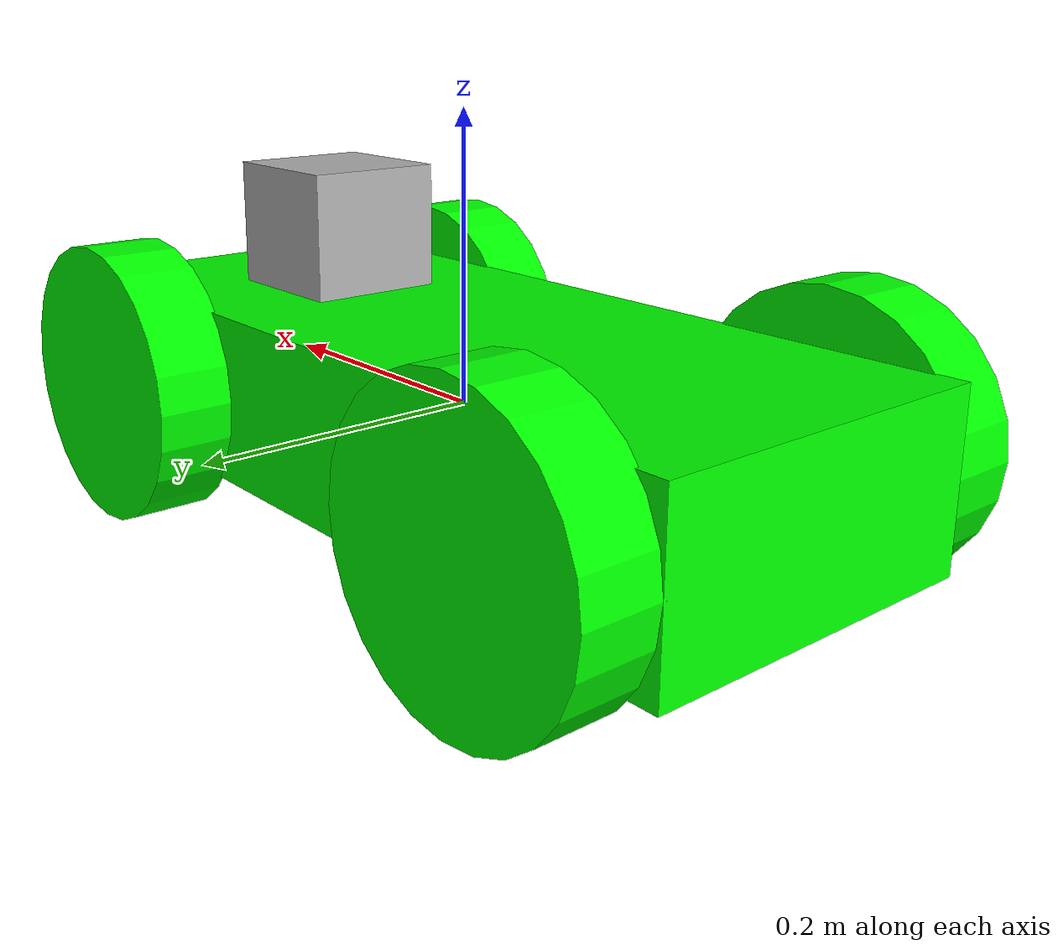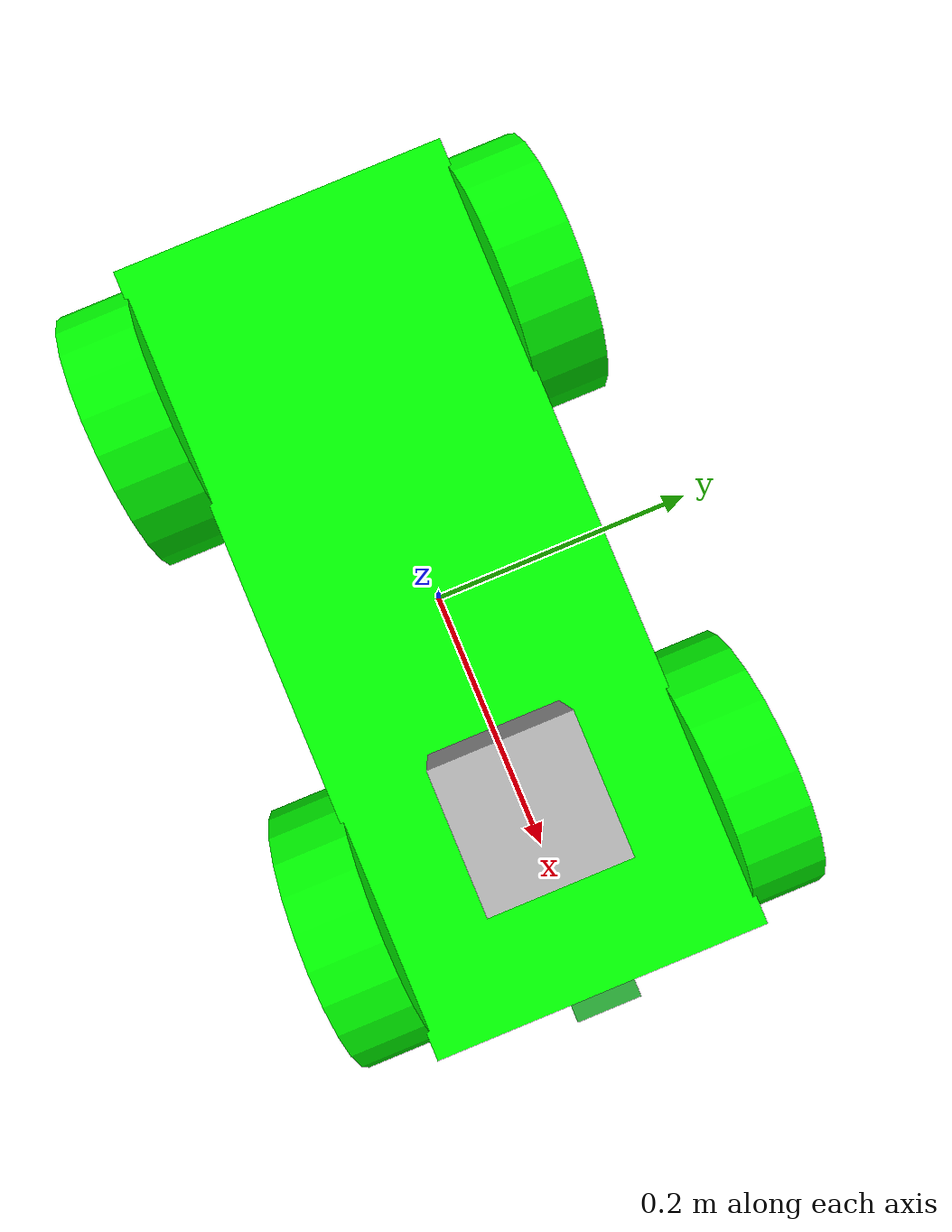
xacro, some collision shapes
<?xml version='1.0'?>

<robot name="my_robot" xmlns:xacro="http://www.ros.org/wiki/xacro">
  <xacro:include filename="$(find my_robot)/urdf/my_robot.gazebo" />

  <!-- Base Link -->
  <link name="robot_footprint"></link>

  <joint name="robot_footprint_joint" type="fixed">
    <origin xyz="0 0 0" rpy="0 0 0" />
    <parent link="robot_footprint"/>
    <child link="chassis" />
  </joint>

  <!-- Chassis -->
  <link name="chassis">
    <pose>0 0 0.1 0 0 0</pose>

    <inertial>
      <mass value="15.0"/>
      <origin xyz="0.0 0 0" rpy="0 0 0"/>
      <inertia
          ixx="0.1" ixy="0" ixz="0"
          iyy="0.1" iyz="0"
          izz="0.1"
      />
    </inertial>

    <collision name="collision">
      <origin xyz="0 0 0" rpy="0 0 0"/>
      <geometry>
        <box size="0.6 0.25 0.12"/>
      </geometry>
    </collision>

    <visual name="chassis_visual">
      <origin xyz="0 0 0" rpy="0 0 0"/>
      <geometry>
        <box size="0.6 0.25 0.12"/>
      </geometry>
      <material name="green_material">
        <color rgba="0 1 0 1"/>
      </material>
    </visual>
  </link>

  <!-- Gazebo-specific material for the chassis -->
  <gazebo reference="chassis">
    <material>Gazebo/Blue</material>
  </gazebo>

  <!-- Left Wheel -->
  <link name="left_wheel">
    <inertial>
      <mass value="5"/>
      <origin xyz="0 0 0" rpy="0 1.5707 1.5707"/>
      <inertia
          ixx="0.1" ixy="0" ixz="0"
          iyy="0.1" iyz="0"
          izz="0.1"
      />
    </inertial>

    <collision name="left_wheel_collision">
      <origin xyz="0 0 0" rpy="0 1.5707 1.5707"/>
      <geometry>
        <cylinder radius="0.1" length="0.055"/>
      </geometry>
    </collision>

    <visual name="left_wheel_visual">
      <origin xyz="0 0 0" rpy="0 1.5707 1.5707"/>
      <geometry>
        <cylinder radius="0.1" length="0.055"/>
      </geometry>
      <material name="green_material">
        <color rgba="0 1 0 1"/>
      </material>
    </visual>
  </link>

  <gazebo reference="left_wheel">
    <material>Gazebo/White</material>
  </gazebo>

  <!-- Right Wheel -->
  <link name="right_wheel">
    <inertial>
      <mass value="5"/>
      <origin xyz="0 0 0" rpy="0 1.5707 1.5707"/>
      <inertia
          ixx="0.1" ixy="0" ixz="0"
          iyy="0.1" iyz="0"
          izz="0.1"
      />
    </inertial>

    <collision name="right_wheel_collision">
      <origin xyz="0 0 0" rpy="0 1.5707 1.5707"/>
      <geometry>
        <cylinder radius="0.1" length="0.055"/>
      </geometry>
    </collision>

    <visual name="right_wheel_visual">
      <origin xyz="0 0 0" rpy="0 1.5707 1.5707"/>
      <geometry>
        <cylinder radius="0.1" length="0.055"/>
      </geometry>
      <material name="green_material">
        <color rgba="0 1 0 1"/>
      </material>
    </visual>
  </link>

  <gazebo reference="right_wheel">
    <material>Gazebo/White</material>
  </gazebo>

<!-- Left Wheel -->
  <link name="front_left_wheel">
    <inertial>
      <mass value="5"/>
      <origin xyz="0 0 0" rpy="0 1.5707 1.5707"/>
      <inertia
          ixx="0.1" ixy="0" ixz="0"
          iyy="0.1" iyz="0"
          izz="0.1"
      />
    </inertial>

    <collision name="front_left_wheel_collision">
      <origin xyz="0 0 0" rpy="0 1.5707 1.5707"/>
      <geometry>
        <cylinder radius="0.1" length="0.055"/>
      </geometry>
    </collision>

    <visual name="front_left_wheel_visual">
      <origin xyz="0 0 0" rpy="0 1.5707 1.5707"/>
      <geometry>
        <cylinder radius="0.1" length="0.055"/>
      </geometry>
      <material name="green_material">
        <color rgba="0 1 0 1"/>
      </material>
    </visual>
  </link>

  <gazebo reference="front_left_wheel">
    <material>Gazebo/White</material>
  </gazebo>

  <!-- Right Wheel -->
  <link name="front_right_wheel">
    <inertial>
      <mass value="5"/>
      <origin xyz="0 0 0" rpy="0 1.5707 1.5707"/>
      <inertia
          ixx="0.1" ixy="0" ixz="0"
          iyy="0.1" iyz="0"
          izz="0.1"
      />
    </inertial>

    <collision name="front_right_wheel_collision">
      <origin xyz="0 0 0" rpy="0 1.5707 1.5707"/>
      <geometry>
        <cylinder radius="0.1" length="0.055"/>
      </geometry>
    </collision>

    <visual name="front_right_wheel_visual">
      <origin xyz="0 0 0" rpy="0 1.5707 1.5707"/>
      <geometry>
        <cylinder radius="0.1" length="0.055"/>
      </geometry>
      <material name="green_material">
        <color rgba="0 1 0 1"/>
      </material>
    </visual>
  </link>

  <gazebo reference="front_right_wheel">
    <material>Gazebo/White</material>
  </gazebo>

  <!-- Camera -->
  <link name="camera">
    <inertial>
      <mass value="0.1"/>
      <origin xyz="0 0 0" rpy="0 0 0"/>
      <inertia ixx="1e-6" ixy="0" ixz="0" iyy="1e-6" iyz="0" izz="1e-6"/>
    </inertial>

    <collision name="camera_collision">
      <origin xyz="0 0 0" rpy="0 0 0"/>
      <geometry>
        <box size="0.05 0.05 0.05"/>
      </geometry>
    </collision>

    <visual name="camera_visual">
      <origin xyz="0 0 0" rpy="0 0 0"/>
      <geometry>
        <box size="0.05 0.05 0.05"/>
      </geometry>
    </visual>
  </link>

  <gazebo reference="camera">
    <material>Gazebo/Green</material>
  </gazebo>

  <link name="hokuyo">
    <inertial>
      <mass value="1e-5"/>
      <origin xyz="0 0 0" rpy="0 0 0"/>
      <inertia
          ixx="1e-6" ixy="0" ixz="0"
          iyy="1e-6" iyz="0"
          izz="1e-6"
      />
    </inertial>

    <collision name="hokuyo_collision">
      <origin xyz="0 0 0" rpy="0 0 0"/>
      <geometry>
        <box size="0.1 0.1 0.1"/>
      </geometry>
    </collision>

    <visual name="hokuyo_visual">
      <origin xyz="0 0 0" rpy="0 0 0"/>
      <geometry>
        <mesh filename="package://my_robot/meshes/hokuyo.dae"/>
      </geometry>
    </visual>
  </link>

  <!-- Left Wheel Joint -->
  <joint type="continuous" name="left_wheel_hinge">
    <origin xyz="-0.2 0.15 0" rpy="0 0 0"/>
    <child link="left_wheel"/>
    <parent link="chassis"/>
    <axis xyz="0 1 0"/>
    <limit effort="10000" velocity="1000"/>
    <dynamics damping="1.0" friction="1.0"/>
  </joint>

  <!-- Right Wheel Joint -->
  <joint type="continuous" name="right_wheel_hinge">
    <origin xyz="-0.2 -0.15 0" rpy="0 0 0"/>
    <child link="right_wheel"/>
    <parent link="chassis"/>
    <axis xyz="0 1 0"/>
    <limit effort="10000" velocity="1000"/>
    <dynamics damping="1.0" friction="1.0"/>
  </joint>

    <!-- Front Left Wheel Joint -->
  <joint type="continuous" name="front_left_wheel_hinge">
    <origin xyz="0.2 0.15 0" rpy="0 0 0"/>
    <child link="front_left_wheel"/>
    <parent link="chassis"/>
    <axis xyz="0 1 0"/>
    <limit effort="10000" velocity="1000"/>
    <dynamics damping="1.0" friction="1.0"/>
  </joint>

  <!-- Front Right Wheel Joint -->
  <joint type="continuous" name="front_right_wheel_hinge">
    <origin xyz="0.2 -0.15 0" rpy="0 0 0"/>
    <child link="front_right_wheel"/>
    <parent link="chassis"/>
    <axis xyz="0 1 0"/>
    <limit effort="10000" velocity="1000"/>
    <dynamics damping="1.0" friction="1.0"/>
  </joint>

  <joint name="camera_joint" type="fixed">
    <origin xyz="0.3 0 0" rpy="0 0 0"/>
    <parent link="chassis"/>
    <child link="camera"/>
    <axis xyz="0 1 0"/>
  </joint>

  <!-- Hokuyo Joint -->
  <joint name="hokuyo_joint" type="fixed">
    <origin xyz="0.15 0 0.1" rpy="0 0 0"/>
    <parent link="chassis"/>
    <child link="hokuyo"/>
    <axis xyz="0 1 0"/>
  </joint>

</robot>
